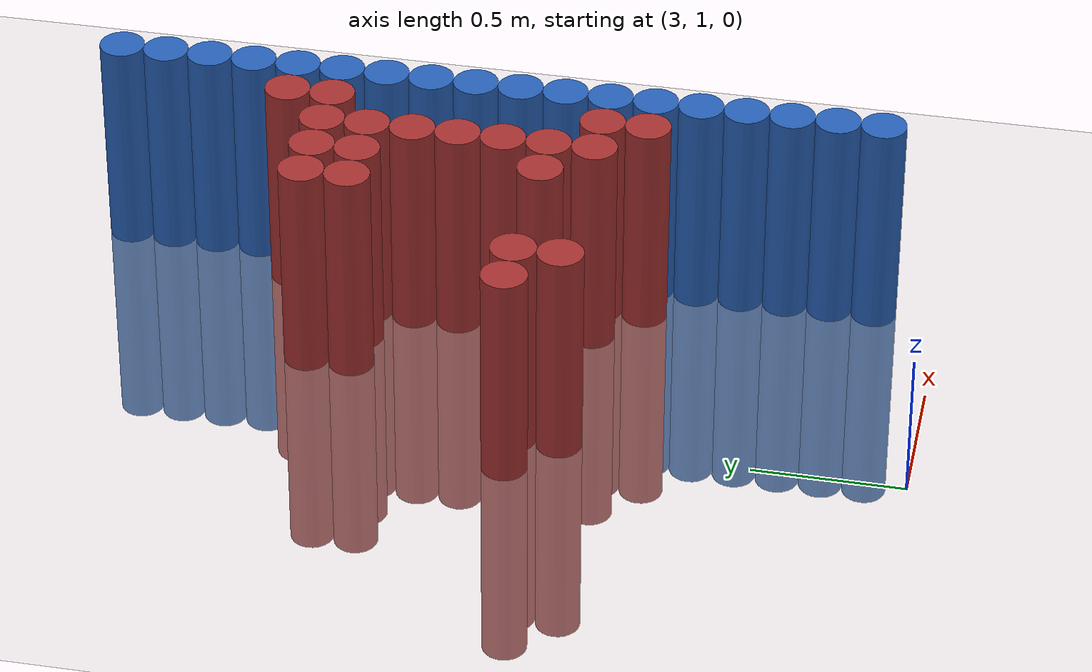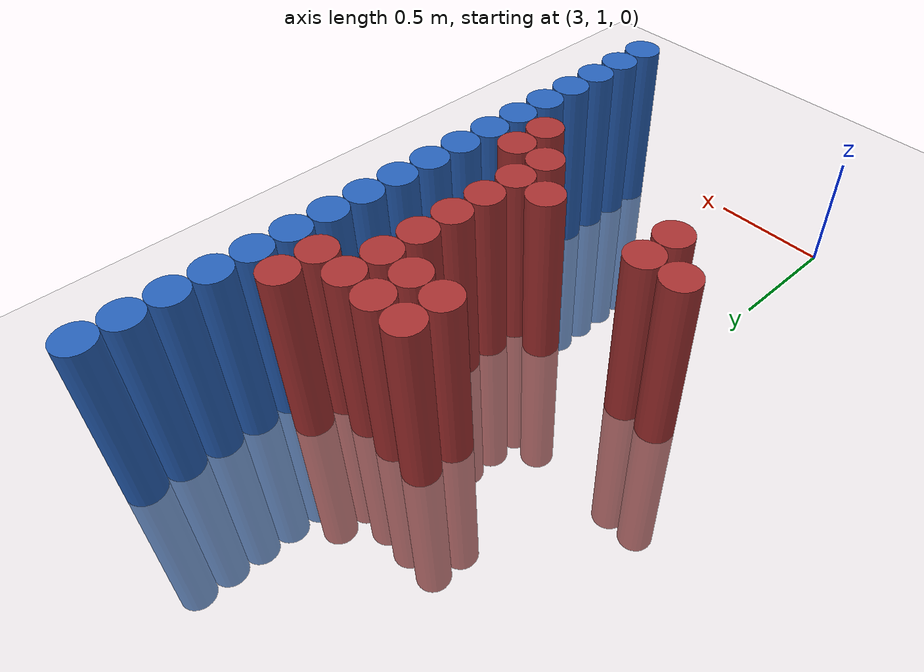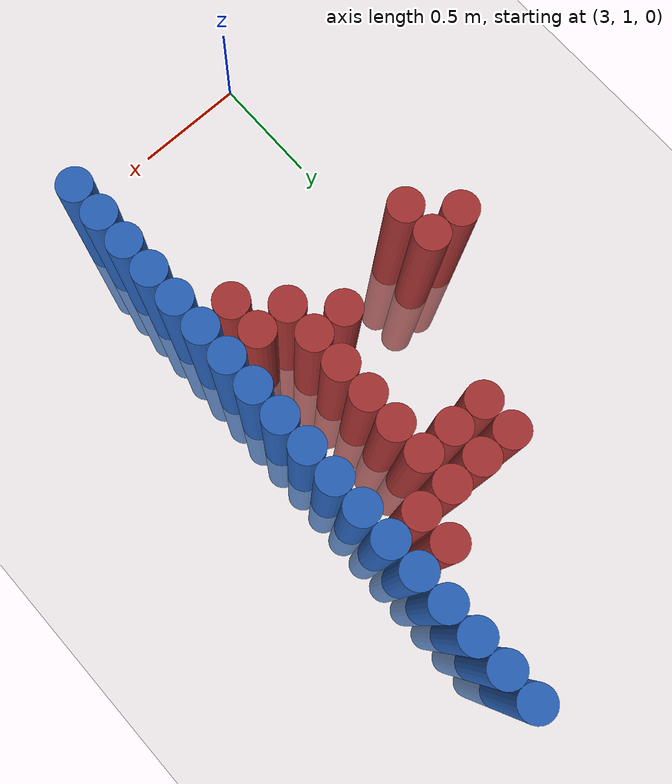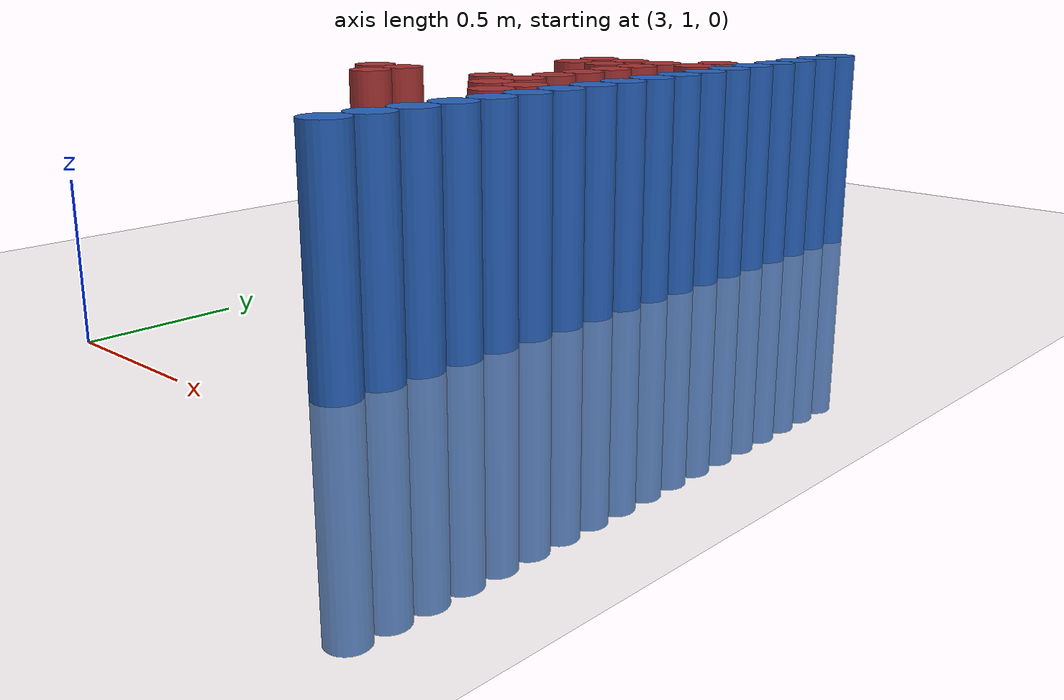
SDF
<sdf version="1.6">
 <world name="default">
  <model name="ground_plane">
   <static>1</static>
   <link name="link">
    <collision name="collision">
     <geometry><plane><normal>0 0 1</normal><size>100 100</size></plane></geometry>
     <surface><friction><ode><mu>100</mu><mu2>50</mu2></ode></friction></surface>
    </collision>
    <visual name="visual">
     <cast_shadows>0</cast_shadows>
     <geometry><plane><normal>0 0 1</normal><size>100 100</size></plane></geometry>
     <material>
      <script><uri>file://media/materials/scripts/gazebo.material</uri><name>Gazebo/Grey</name></script>
     </material>
    </visual>
   </link>
  </model>
  <model name="unit_cylinder_132">
   <static>1</static>
   <pose>3.925000 1.375000 0.000000 0.000000 0.000000 0.000000</pose>
   <link name="link">
    <inertial>
     <mass>1</mass>
     <inertia><ixx>0.145833</ixx><ixy>0</ixy><ixz>0</ixz><iyy>0.145833</iyy><iyz>0</iyz><izz>0.125</izz></inertia>
    </inertial>
    <collision name="collision">
     <geometry><cylinder><radius>0.075000</radius><length>1.5</length></cylinder></geometry>
    </collision>
    <visual name="visual">
     <geometry><cylinder><radius>0.075000</radius><length>1.5</length></cylinder></geometry>
     <material>
      <ambient>0.152000 0.379000 0.720000 1</ambient>
      <diffuse>0.152000 0.379000 0.720000 1</diffuse>
     </material>
     <material>
      <script><name>Gazebo/Grey</name><uri>file://media/materials/scripts/gazebo.material</uri></script>
     </material>
    </visual>
   </link>
  </model>
  <model name="unit_cylinder_134">
   <static>1</static>
   <pose>3.925000 1.525000 0.000000 0.000000 0.000000 0.000000</pose>
   <link name="link">
    <inertial>
     <mass>1</mass>
     <inertia><ixx>0.145833</ixx><ixy>0</ixy><ixz>0</ixz><iyy>0.145833</iyy><iyz>0</iyz><izz>0.125</izz></inertia>
    </inertial>
    <collision name="collision">
     <geometry><cylinder><radius>0.075000</radius><length>1.5</length></cylinder></geometry>
    </collision>
    <visual name="visual">
     <geometry><cylinder><radius>0.075000</radius><length>1.5</length></cylinder></geometry>
     <material>
      <ambient>0.152000 0.379000 0.720000 1</ambient>
      <diffuse>0.152000 0.379000 0.720000 1</diffuse>
     </material>
     <material>
      <script><name>Gazebo/Grey</name><uri>file://media/materials/scripts/gazebo.material</uri></script>
     </material>
    </visual>
   </link>
  </model>
  <model name="unit_cylinder_136">
   <static>1</static>
   <pose>3.925000 1.675000 0.000000 0.000000 0.000000 0.000000</pose>
   <link name="link">
    <inertial>
     <mass>1</mass>
     <inertia><ixx>0.145833</ixx><ixy>0</ixy><ixz>0</ixz><iyy>0.145833</iyy><iyz>0</iyz><izz>0.125</izz></inertia>
    </inertial>
    <collision name="collision">
     <geometry><cylinder><radius>0.075000</radius><length>1.5</length></cylinder></geometry>
    </collision>
    <visual name="visual">
     <geometry><cylinder><radius>0.075000</radius><length>1.5</length></cylinder></geometry>
     <material>
      <ambient>0.152000 0.379000 0.720000 1</ambient>
      <diffuse>0.152000 0.379000 0.720000 1</diffuse>
     </material>
     <material>
      <script><name>Gazebo/Grey</name><uri>file://media/materials/scripts/gazebo.material</uri></script>
     </material>
    </visual>
   </link>
  </model>
  <model name="unit_cylinder_138">
   <static>1</static>
   <pose>3.925000 1.825000 0.000000 0.000000 0.000000 0.000000</pose>
   <link name="link">
    <inertial>
     <mass>1</mass>
     <inertia><ixx>0.145833</ixx><ixy>0</ixy><ixz>0</ixz><iyy>0.145833</iyy><iyz>0</iyz><izz>0.125</izz></inertia>
    </inertial>
    <collision name="collision">
     <geometry><cylinder><radius>0.075000</radius><length>1.5</length></cylinder></geometry>
    </collision>
    <visual name="visual">
     <geometry><cylinder><radius>0.075000</radius><length>1.5</length></cylinder></geometry>
     <material>
      <ambient>0.152000 0.379000 0.720000 1</ambient>
      <diffuse>0.152000 0.379000 0.720000 1</diffuse>
     </material>
     <material>
      <script><name>Gazebo/Grey</name><uri>file://media/materials/scripts/gazebo.material</uri></script>
     </material>
    </visual>
   </link>
  </model>
  <model name="unit_cylinder_140">
   <static>1</static>
   <pose>3.925000 1.975000 0.000000 0.000000 0.000000 0.000000</pose>
   <link name="link">
    <inertial>
     <mass>1</mass>
     <inertia><ixx>0.145833</ixx><ixy>0</ixy><ixz>0</ixz><iyy>0.145833</iyy><iyz>0</iyz><izz>0.125</izz></inertia>
    </inertial>
    <collision name="collision">
     <geometry><cylinder><radius>0.075000</radius><length>1.5</length></cylinder></geometry>
    </collision>
    <visual name="visual">
     <geometry><cylinder><radius>0.075000</radius><length>1.5</length></cylinder></geometry>
     <material>
      <ambient>0.152000 0.379000 0.720000 1</ambient>
      <diffuse>0.152000 0.379000 0.720000 1</diffuse>
     </material>
     <material>
      <script><name>Gazebo/Grey</name><uri>file://media/materials/scripts/gazebo.material</uri></script>
     </material>
    </visual>
   </link>
  </model>
  <model name="unit_cylinder_142">
   <static>1</static>
   <pose>3.925000 2.125000 0.000000 0.000000 0.000000 0.000000</pose>
   <link name="link">
    <inertial>
     <mass>1</mass>
     <inertia><ixx>0.145833</ixx><ixy>0</ixy><ixz>0</ixz><iyy>0.145833</iyy><iyz>0</iyz><izz>0.125</izz></inertia>
    </inertial>
    <collision name="collision">
     <geometry><cylinder><radius>0.075000</radius><length>1.5</length></cylinder></geometry>
    </collision>
    <visual name="visual">
     <geometry><cylinder><radius>0.075000</radius><length>1.5</length></cylinder></geometry>
     <material>
      <ambient>0.152000 0.379000 0.720000 1</ambient>
      <diffuse>0.152000 0.379000 0.720000 1</diffuse>
     </material>
     <material>
      <script><name>Gazebo/Grey</name><uri>file://media/materials/scripts/gazebo.material</uri></script>
     </material>
    </visual>
   </link>
  </model>
  <model name="unit_cylinder_144">
   <static>1</static>
   <pose>3.925000 2.275000 0.000000 0.000000 0.000000 0.000000</pose>
   <link name="link">
    <inertial>
     <mass>1</mass>
     <inertia><ixx>0.145833</ixx><ixy>0</ixy><ixz>0</ixz><iyy>0.145833</iyy><iyz>0</iyz><izz>0.125</izz></inertia>
    </inertial>
    <collision name="collision">
     <geometry><cylinder><radius>0.075000</radius><length>1.5</length></cylinder></geometry>
    </collision>
    <visual name="visual">
     <geometry><cylinder><radius>0.075000</radius><length>1.5</length></cylinder></geometry>
     <material>
      <ambient>0.152000 0.379000 0.720000 1</ambient>
      <diffuse>0.152000 0.379000 0.720000 1</diffuse>
     </material>
     <material>
      <script><name>Gazebo/Grey</name><uri>file://media/materials/scripts/gazebo.material</uri></script>
     </material>
    </visual>
   </link>
  </model>
  <model name="unit_cylinder_146">
   <static>1</static>
   <pose>3.925000 2.425000 0.000000 0.000000 0.000000 0.000000</pose>
   <link name="link">
    <inertial>
     <mass>1</mass>
     <inertia><ixx>0.145833</ixx><ixy>0</ixy><ixz>0</ixz><iyy>0.145833</iyy><iyz>0</iyz><izz>0.125</izz></inertia>
    </inertial>
    <collision name="collision">
     <geometry><cylinder><radius>0.075000</radius><length>1.5</length></cylinder></geometry>
    </collision>
    <visual name="visual">
     <geometry><cylinder><radius>0.075000</radius><length>1.5</length></cylinder></geometry>
     <material>
      <ambient>0.152000 0.379000 0.720000 1</ambient>
      <diffuse>0.152000 0.379000 0.720000 1</diffuse>
     </material>
     <material>
      <script><name>Gazebo/Grey</name><uri>file://media/materials/scripts/gazebo.material</uri></script>
     </material>
    </visual>
   </link>
  </model>
  <model name="unit_cylinder_148">
   <static>1</static>
   <pose>3.925000 2.575000 0.000000 0.000000 0.000000 0.000000</pose>
   <link name="link">
    <inertial>
     <mass>1</mass>
     <inertia><ixx>0.145833</ixx><ixy>0</ixy><ixz>0</ixz><iyy>0.145833</iyy><iyz>0</iyz><izz>0.125</izz></inertia>
    </inertial>
    <collision name="collision">
     <geometry><cylinder><radius>0.075000</radius><length>1.5</length></cylinder></geometry>
    </collision>
    <visual name="visual">
     <geometry><cylinder><radius>0.075000</radius><length>1.5</length></cylinder></geometry>
     <material>
      <ambient>0.152000 0.379000 0.720000 1</ambient>
      <diffuse>0.152000 0.379000 0.720000 1</diffuse>
     </material>
     <material>
      <script><name>Gazebo/Grey</name><uri>file://media/materials/scripts/gazebo.material</uri></script>
     </material>
    </visual>
   </link>
  </model>
  <model name="unit_cylinder_150">
   <static>1</static>
   <pose>3.925000 2.725000 0.000000 0.000000 0.000000 0.000000</pose>
   <link name="link">
    <inertial>
     <mass>1</mass>
     <inertia><ixx>0.145833</ixx><ixy>0</ixy><ixz>0</ixz><iyy>0.145833</iyy><iyz>0</iyz><izz>0.125</izz></inertia>
    </inertial>
    <collision name="collision">
     <geometry><cylinder><radius>0.075000</radius><length>1.5</length></cylinder></geometry>
    </collision>
    <visual name="visual">
     <geometry><cylinder><radius>0.075000</radius><length>1.5</length></cylinder></geometry>
     <material>
      <ambient>0.152000 0.379000 0.720000 1</ambient>
      <diffuse>0.152000 0.379000 0.720000 1</diffuse>
     </material>
     <material>
      <script><name>Gazebo/Grey</name><uri>file://media/materials/scripts/gazebo.material</uri></script>
     </material>
    </visual>
   </link>
  </model>
  <model name="unit_cylinder_152">
   <static>1</static>
   <pose>3.925000 2.875000 0.000000 0.000000 0.000000 0.000000</pose>
   <link name="link">
    <inertial>
     <mass>1</mass>
     <inertia><ixx>0.145833</ixx><ixy>0</ixy><ixz>0</ixz><iyy>0.145833</iyy><iyz>0</iyz><izz>0.125</izz></inertia>
    </inertial>
    <collision name="collision">
     <geometry><cylinder><radius>0.075000</radius><length>1.5</length></cylinder></geometry>
    </collision>
    <visual name="visual">
     <geometry><cylinder><radius>0.075000</radius><length>1.5</length></cylinder></geometry>
     <material>
      <ambient>0.152000 0.379000 0.720000 1</ambient>
      <diffuse>0.152000 0.379000 0.720000 1</diffuse>
     </material>
     <material>
      <script><name>Gazebo/Grey</name><uri>file://media/materials/scripts/gazebo.material</uri></script>
     </material>
    </visual>
   </link>
  </model>
  <model name="unit_cylinder_154">
   <static>1</static>
   <pose>3.925000 3.025000 0.000000 0.000000 0.000000 0.000000</pose>
   <link name="link">
    <inertial>
     <mass>1</mass>
     <inertia><ixx>0.145833</ixx><ixy>0</ixy><ixz>0</ixz><iyy>0.145833</iyy><iyz>0</iyz><izz>0.125</izz></inertia>
    </inertial>
    <collision name="collision">
     <geometry><cylinder><radius>0.075000</radius><length>1.5</length></cylinder></geometry>
    </collision>
    <visual name="visual">
     <geometry><cylinder><radius>0.075000</radius><length>1.5</length></cylinder></geometry>
     <material>
      <ambient>0.152000 0.379000 0.720000 1</ambient>
      <diffuse>0.152000 0.379000 0.720000 1</diffuse>
     </material>
     <material>
      <script><name>Gazebo/Grey</name><uri>file://media/materials/scripts/gazebo.material</uri></script>
     </material>
    </visual>
   </link>
  </model>
  <model name="unit_cylinder_156">
   <static>1</static>
   <pose>3.925000 3.175000 0.000000 0.000000 0.000000 0.000000</pose>
   <link name="link">
    <inertial>
     <mass>1</mass>
     <inertia><ixx>0.145833</ixx><ixy>0</ixy><ixz>0</ixz><iyy>0.145833</iyy><iyz>0</iyz><izz>0.125</izz></inertia>
    </inertial>
    <collision name="collision">
     <geometry><cylinder><radius>0.075000</radius><length>1.5</length></cylinder></geometry>
    </collision>
    <visual name="visual">
     <geometry><cylinder><radius>0.075000</radius><length>1.5</length></cylinder></geometry>
     <material>
      <ambient>0.152000 0.379000 0.720000 1</ambient>
      <diffuse>0.152000 0.379000 0.720000 1</diffuse>
     </material>
     <material>
      <script><name>Gazebo/Grey</name><uri>file://media/materials/scripts/gazebo.material</uri></script>
     </material>
    </visual>
   </link>
  </model>
  <model name="unit_cylinder_158">
   <static>1</static>
   <pose>3.925000 3.325000 0.000000 0.000000 0.000000 0.000000</pose>
   <link name="link">
    <inertial>
     <mass>1</mass>
     <inertia><ixx>0.145833</ixx><ixy>0</ixy><ixz>0</ixz><iyy>0.145833</iyy><iyz>0</iyz><izz>0.125</izz></inertia>
    </inertial>
    <collision name="collision">
     <geometry><cylinder><radius>0.075000</radius><length>1.5</length></cylinder></geometry>
    </collision>
    <visual name="visual">
     <geometry><cylinder><radius>0.075000</radius><length>1.5</length></cylinder></geometry>
     <material>
      <ambient>0.152000 0.379000 0.720000 1</ambient>
      <diffuse>0.152000 0.379000 0.720000 1</diffuse>
     </material>
     <material>
      <script><name>Gazebo/Grey</name><uri>file://media/materials/scripts/gazebo.material</uri></script>
     </material>
    </visual>
   </link>
  </model>
  <model name="unit_cylinder_160">
   <static>1</static>
   <pose>3.925000 3.475000 0.000000 0.000000 0.000000 0.000000</pose>
   <link name="link">
    <inertial>
     <mass>1</mass>
     <inertia><ixx>0.145833</ixx><ixy>0</ixy><ixz>0</ixz><iyy>0.145833</iyy><iyz>0</iyz><izz>0.125</izz></inertia>
    </inertial>
    <collision name="collision">
     <geometry><cylinder><radius>0.075000</radius><length>1.5</length></cylinder></geometry>
    </collision>
    <visual name="visual">
     <geometry><cylinder><radius>0.075000</radius><length>1.5</length></cylinder></geometry>
     <material>
      <ambient>0.152000 0.379000 0.720000 1</ambient>
      <diffuse>0.152000 0.379000 0.720000 1</diffuse>
     </material>
     <material>
      <script><name>Gazebo/Grey</name><uri>file://media/materials/scripts/gazebo.material</uri></script>
     </material>
    </visual>
   </link>
  </model>
  <model name="unit_cylinder_162">
   <static>1</static>
   <pose>3.925000 3.625000 0.000000 0.000000 0.000000 0.000000</pose>
   <link name="link">
    <inertial>
     <mass>1</mass>
     <inertia><ixx>0.145833</ixx><ixy>0</ixy><ixz>0</ixz><iyy>0.145833</iyy><iyz>0</iyz><izz>0.125</izz></inertia>
    </inertial>
    <collision name="collision">
     <geometry><cylinder><radius>0.075000</radius><length>1.5</length></cylinder></geometry>
    </collision>
    <visual name="visual">
     <geometry><cylinder><radius>0.075000</radius><length>1.5</length></cylinder></geometry>
     <material>
      <ambient>0.152000 0.379000 0.720000 1</ambient>
      <diffuse>0.152000 0.379000 0.720000 1</diffuse>
     </material>
     <material>
      <script><name>Gazebo/Grey</name><uri>file://media/materials/scripts/gazebo.material</uri></script>
     </material>
    </visual>
   </link>
  </model>
  <model name="unit_cylinder_164">
   <static>1</static>
   <pose>3.925000 3.775000 0.000000 0.000000 0.000000 0.000000</pose>
   <link name="link">
    <inertial>
     <mass>1</mass>
     <inertia><ixx>0.145833</ixx><ixy>0</ixy><ixz>0</ixz><iyy>0.145833</iyy><iyz>0</iyz><izz>0.125</izz></inertia>
    </inertial>
    <collision name="collision">
     <geometry><cylinder><radius>0.075000</radius><length>1.5</length></cylinder></geometry>
    </collision>
    <visual name="visual">
     <geometry><cylinder><radius>0.075000</radius><length>1.5</length></cylinder></geometry>
     <material>
      <ambient>0.152000 0.379000 0.720000 1</ambient>
      <diffuse>0.152000 0.379000 0.720000 1</diffuse>
     </material>
     <material>
      <script><name>Gazebo/Grey</name><uri>file://media/materials/scripts/gazebo.material</uri></script>
     </material>
    </visual>
   </link>
  </model>
  <model name="unit_cylinder_433">
   <static>1</static>
   <pose>2.875000 2.275000 0.000000 0.000000 0.000000 0.000000</pose>
   <link name="link">
    <inertial>
     <mass>1</mass>
     <inertia><ixx>0.145833</ixx><ixy>0</ixy><ixz>0</ixz><iyy>0.145833</iyy><iyz>0</iyz><izz>0.125</izz></inertia>
    </inertial>
    <collision name="collision">
     <geometry><cylinder><radius>0.075000</radius><length>1.5</length></cylinder></geometry>
    </collision>
    <visual name="visual">
     <geometry><cylinder><radius>0.075000</radius><length>1.5</length></cylinder></geometry>
     <material>
      <ambient>0.648000 0.192000 0.192000 1</ambient>
      <diffuse>0.648000 0.192000 0.192000 1</diffuse>
     </material>
     <material>
      <script><name>Gazebo/Grey</name><uri>file://media/materials/scripts/gazebo.material</uri></script>
     </material>
    </visual>
   </link>
  </model>
  <model name="unit_cylinder_435">
   <static>1</static>
   <pose>3.025000 2.125000 0.000000 0.000000 0.000000 0.000000</pose>
   <link name="link">
    <inertial>
     <mass>1</mass>
     <inertia><ixx>0.145833</ixx><ixy>0</ixy><ixz>0</ixz><iyy>0.145833</iyy><iyz>0</iyz><izz>0.125</izz></inertia>
    </inertial>
    <collision name="collision">
     <geometry><cylinder><radius>0.075000</radius><length>1.5</length></cylinder></geometry>
    </collision>
    <visual name="visual">
     <geometry><cylinder><radius>0.075000</radius><length>1.5</length></cylinder></geometry>
     <material>
      <ambient>0.648000 0.192000 0.192000 1</ambient>
      <diffuse>0.648000 0.192000 0.192000 1</diffuse>
     </material>
     <material>
      <script><name>Gazebo/Grey</name><uri>file://media/materials/scripts/gazebo.material</uri></script>
     </material>
    </visual>
   </link>
  </model>
  <model name="unit_cylinder_436">
   <static>1</static>
   <pose>3.025000 2.275000 0.000000 0.000000 0.000000 0.000000</pose>
   <link name="link">
    <inertial>
     <mass>1</mass>
     <inertia><ixx>0.145833</ixx><ixy>0</ixy><ixz>0</ixz><iyy>0.145833</iyy><iyz>0</iyz><izz>0.125</izz></inertia>
    </inertial>
    <collision name="collision">
     <geometry><cylinder><radius>0.075000</radius><length>1.5</length></cylinder></geometry>
    </collision>
    <visual name="visual">
     <geometry><cylinder><radius>0.075000</radius><length>1.5</length></cylinder></geometry>
     <material>
      <ambient>0.648000 0.192000 0.192000 1</ambient>
      <diffuse>0.648000 0.192000 0.192000 1</diffuse>
     </material>
     <material>
      <script><name>Gazebo/Grey</name><uri>file://media/materials/scripts/gazebo.material</uri></script>
     </material>
    </visual>
   </link>
  </model>
  <model name="unit_cylinder_441">
   <static>1</static>
   <pose>3.325000 2.875000 0.000000 0.000000 0.000000 0.000000</pose>
   <link name="link">
    <inertial>
     <mass>1</mass>
     <inertia><ixx>0.145833</ixx><ixy>0</ixy><ixz>0</ixz><iyy>0.145833</iyy><iyz>0</iyz><izz>0.125</izz></inertia>
    </inertial>
    <collision name="collision">
     <geometry><cylinder><radius>0.075000</radius><length>1.5</length></cylinder></geometry>
    </collision>
    <visual name="visual">
     <geometry><cylinder><radius>0.075000</radius><length>1.5</length></cylinder></geometry>
     <material>
      <ambient>0.648000 0.192000 0.192000 1</ambient>
      <diffuse>0.648000 0.192000 0.192000 1</diffuse>
     </material>
     <material>
      <script><name>Gazebo/Grey</name><uri>file://media/materials/scripts/gazebo.material</uri></script>
     </material>
    </visual>
   </link>
  </model>
  <model name="unit_cylinder_442">
   <static>1</static>
   <pose>3.325000 3.025000 0.000000 0.000000 0.000000 0.000000</pose>
   <link name="link">
    <inertial>
     <mass>1</mass>
     <inertia><ixx>0.145833</ixx><ixy>0</ixy><ixz>0</ixz><iyy>0.145833</iyy><iyz>0</iyz><izz>0.125</izz></inertia>
    </inertial>
    <collision name="collision">
     <geometry><cylinder><radius>0.075000</radius><length>1.5</length></cylinder></geometry>
    </collision>
    <visual name="visual">
     <geometry><cylinder><radius>0.075000</radius><length>1.5</length></cylinder></geometry>
     <material>
      <ambient>0.648000 0.192000 0.192000 1</ambient>
      <diffuse>0.648000 0.192000 0.192000 1</diffuse>
     </material>
     <material>
      <script><name>Gazebo/Grey</name><uri>file://media/materials/scripts/gazebo.material</uri></script>
     </material>
    </visual>
   </link>
  </model>
  <model name="unit_cylinder_447">
   <static>1</static>
   <pose>3.475000 2.275000 0.000000 0.000000 0.000000 0.000000</pose>
   <link name="link">
    <inertial>
     <mass>1</mass>
     <inertia><ixx>0.145833</ixx><ixy>0</ixy><ixz>0</ixz><iyy>0.145833</iyy><iyz>0</iyz><izz>0.125</izz></inertia>
    </inertial>
    <collision name="collision">
     <geometry><cylinder><radius>0.075000</radius><length>1.5</length></cylinder></geometry>
    </collision>
    <visual name="visual">
     <geometry><cylinder><radius>0.075000</radius><length>1.5</length></cylinder></geometry>
     <material>
      <ambient>0.648000 0.192000 0.192000 1</ambient>
      <diffuse>0.648000 0.192000 0.192000 1</diffuse>
     </material>
     <material>
      <script><name>Gazebo/Grey</name><uri>file://media/materials/scripts/gazebo.material</uri></script>
     </material>
    </visual>
   </link>
  </model>
  <model name="unit_cylinder_448">
   <static>1</static>
   <pose>3.475000 2.875000 0.000000 0.000000 0.000000 0.000000</pose>
   <link name="link">
    <inertial>
     <mass>1</mass>
     <inertia><ixx>0.145833</ixx><ixy>0</ixy><ixz>0</ixz><iyy>0.145833</iyy><iyz>0</iyz><izz>0.125</izz></inertia>
    </inertial>
    <collision name="collision">
     <geometry><cylinder><radius>0.075000</radius><length>1.5</length></cylinder></geometry>
    </collision>
    <visual name="visual">
     <geometry><cylinder><radius>0.075000</radius><length>1.5</length></cylinder></geometry>
     <material>
      <ambient>0.648000 0.192000 0.192000 1</ambient>
      <diffuse>0.648000 0.192000 0.192000 1</diffuse>
     </material>
     <material>
      <script><name>Gazebo/Grey</name><uri>file://media/materials/scripts/gazebo.material</uri></script>
     </material>
    </visual>
   </link>
  </model>
  <model name="unit_cylinder_449">
   <static>1</static>
   <pose>3.475000 3.025000 0.000000 0.000000 0.000000 0.000000</pose>
   <link name="link">
    <inertial>
     <mass>1</mass>
     <inertia><ixx>0.145833</ixx><ixy>0</ixy><ixz>0</ixz><iyy>0.145833</iyy><iyz>0</iyz><izz>0.125</izz></inertia>
    </inertial>
    <collision name="collision">
     <geometry><cylinder><radius>0.075000</radius><length>1.5</length></cylinder></geometry>
    </collision>
    <visual name="visual">
     <geometry><cylinder><radius>0.075000</radius><length>1.5</length></cylinder></geometry>
     <material>
      <ambient>0.648000 0.192000 0.192000 1</ambient>
      <diffuse>0.648000 0.192000 0.192000 1</diffuse>
     </material>
     <material>
      <script><name>Gazebo/Grey</name><uri>file://media/materials/scripts/gazebo.material</uri></script>
     </material>
    </visual>
   </link>
  </model>
  <model name="unit_cylinder_457">
   <static>1</static>
   <pose>3.625000 2.125000 0.000000 0.000000 0.000000 0.000000</pose>
   <link name="link">
    <inertial>
     <mass>1</mass>
     <inertia><ixx>0.145833</ixx><ixy>0</ixy><ixz>0</ixz><iyy>0.145833</iyy><iyz>0</iyz><izz>0.125</izz></inertia>
    </inertial>
    <collision name="collision">
     <geometry><cylinder><radius>0.075000</radius><length>1.5</length></cylinder></geometry>
    </collision>
    <visual name="visual">
     <geometry><cylinder><radius>0.075000</radius><length>1.5</length></cylinder></geometry>
     <material>
      <ambient>0.648000 0.192000 0.192000 1</ambient>
      <diffuse>0.648000 0.192000 0.192000 1</diffuse>
     </material>
     <material>
      <script><name>Gazebo/Grey</name><uri>file://media/materials/scripts/gazebo.material</uri></script>
     </material>
    </visual>
   </link>
  </model>
  <model name="unit_cylinder_458">
   <static>1</static>
   <pose>3.625000 2.275000 0.000000 0.000000 0.000000 0.000000</pose>
   <link name="link">
    <inertial>
     <mass>1</mass>
     <inertia><ixx>0.145833</ixx><ixy>0</ixy><ixz>0</ixz><iyy>0.145833</iyy><iyz>0</iyz><izz>0.125</izz></inertia>
    </inertial>
    <collision name="collision">
     <geometry><cylinder><radius>0.075000</radius><length>1.5</length></cylinder></geometry>
    </collision>
    <visual name="visual">
     <geometry><cylinder><radius>0.075000</radius><length>1.5</length></cylinder></geometry>
     <material>
      <ambient>0.648000 0.192000 0.192000 1</ambient>
      <diffuse>0.648000 0.192000 0.192000 1</diffuse>
     </material>
     <material>
      <script><name>Gazebo/Grey</name><uri>file://media/materials/scripts/gazebo.material</uri></script>
     </material>
    </visual>
   </link>
  </model>
  <model name="unit_cylinder_459">
   <static>1</static>
   <pose>3.625000 2.425000 0.000000 0.000000 0.000000 0.000000</pose>
   <link name="link">
    <inertial>
     <mass>1</mass>
     <inertia><ixx>0.145833</ixx><ixy>0</ixy><ixz>0</ixz><iyy>0.145833</iyy><iyz>0</iyz><izz>0.125</izz></inertia>
    </inertial>
    <collision name="collision">
     <geometry><cylinder><radius>0.075000</radius><length>1.5</length></cylinder></geometry>
    </collision>
    <visual name="visual">
     <geometry><cylinder><radius>0.075000</radius><length>1.5</length></cylinder></geometry>
     <material>
      <ambient>0.648000 0.192000 0.192000 1</ambient>
      <diffuse>0.648000 0.192000 0.192000 1</diffuse>
     </material>
     <material>
      <script><name>Gazebo/Grey</name><uri>file://media/materials/scripts/gazebo.material</uri></script>
     </material>
    </visual>
   </link>
  </model>
  <model name="unit_cylinder_460">
   <static>1</static>
   <pose>3.625000 2.575000 0.000000 0.000000 0.000000 0.000000</pose>
   <link name="link">
    <inertial>
     <mass>1</mass>
     <inertia><ixx>0.145833</ixx><ixy>0</ixy><ixz>0</ixz><iyy>0.145833</iyy><iyz>0</iyz><izz>0.125</izz></inertia>
    </inertial>
    <collision name="collision">
     <geometry><cylinder><radius>0.075000</radius><length>1.5</length></cylinder></geometry>
    </collision>
    <visual name="visual">
     <geometry><cylinder><radius>0.075000</radius><length>1.5</length></cylinder></geometry>
     <material>
      <ambient>0.648000 0.192000 0.192000 1</ambient>
      <diffuse>0.648000 0.192000 0.192000 1</diffuse>
     </material>
     <material>
      <script><name>Gazebo/Grey</name><uri>file://media/materials/scripts/gazebo.material</uri></script>
     </material>
    </visual>
   </link>
  </model>
  <model name="unit_cylinder_461">
   <static>1</static>
   <pose>3.625000 2.725000 0.000000 0.000000 0.000000 0.000000</pose>
   <link name="link">
    <inertial>
     <mass>1</mass>
     <inertia><ixx>0.145833</ixx><ixy>0</ixy><ixz>0</ixz><iyy>0.145833</iyy><iyz>0</iyz><izz>0.125</izz></inertia>
    </inertial>
    <collision name="collision">
     <geometry><cylinder><radius>0.075000</radius><length>1.5</length></cylinder></geometry>
    </collision>
    <visual name="visual">
     <geometry><cylinder><radius>0.075000</radius><length>1.5</length></cylinder></geometry>
     <material>
      <ambient>0.648000 0.192000 0.192000 1</ambient>
      <diffuse>0.648000 0.192000 0.192000 1</diffuse>
     </material>
     <material>
      <script><name>Gazebo/Grey</name><uri>file://media/materials/scripts/gazebo.material</uri></script>
     </material>
    </visual>
   </link>
  </model>
  <model name="unit_cylinder_462">
   <static>1</static>
   <pose>3.625000 2.875000 0.000000 0.000000 0.000000 0.000000</pose>
   <link name="link">
    <inertial>
     <mass>1</mass>
     <inertia><ixx>0.145833</ixx><ixy>0</ixy><ixz>0</ixz><iyy>0.145833</iyy><iyz>0</iyz><izz>0.125</izz></inertia>
    </inertial>
    <collision name="collision">
     <geometry><cylinder><radius>0.075000</radius><length>1.5</length></cylinder></geometry>
    </collision>
    <visual name="visual">
     <geometry><cylinder><radius>0.075000</radius><length>1.5</length></cylinder></geometry>
     <material>
      <ambient>0.648000 0.192000 0.192000 1</ambient>
      <diffuse>0.648000 0.192000 0.192000 1</diffuse>
     </material>
     <material>
      <script><name>Gazebo/Grey</name><uri>file://media/materials/scripts/gazebo.material</uri></script>
     </material>
    </visual>
   </link>
  </model>
  <model name="unit_cylinder_463">
   <static>1</static>
   <pose>3.625000 3.025000 0.000000 0.000000 0.000000 0.000000</pose>
   <link name="link">
    <inertial>
     <mass>1</mass>
     <inertia><ixx>0.145833</ixx><ixy>0</ixy><ixz>0</ixz><iyy>0.145833</iyy><iyz>0</iyz><izz>0.125</izz></inertia>
    </inertial>
    <collision name="collision">
     <geometry><cylinder><radius>0.075000</radius><length>1.5</length></cylinder></geometry>
    </collision>
    <visual name="visual">
     <geometry><cylinder><radius>0.075000</radius><length>1.5</length></cylinder></geometry>
     <material>
      <ambient>0.648000 0.192000 0.192000 1</ambient>
      <diffuse>0.648000 0.192000 0.192000 1</diffuse>
     </material>
     <material>
      <script><name>Gazebo/Grey</name><uri>file://media/materials/scripts/gazebo.material</uri></script>
     </material>
    </visual>
   </link>
  </model>
  <model name="unit_cylinder_482">
   <static>1</static>
   <pose>3.775000 1.975000 0.000000 0.000000 0.000000 0.000000</pose>
   <link name="link">
    <inertial>
     <mass>1</mass>
     <inertia><ixx>0.145833</ixx><ixy>0</ixy><ixz>0</ixz><iyy>0.145833</iyy><iyz>0</iyz><izz>0.125</izz></inertia>
    </inertial>
    <collision name="collision">
     <geometry><cylinder><radius>0.075000</radius><length>1.5</length></cylinder></geometry>
    </collision>
    <visual name="visual">
     <geometry><cylinder><radius>0.075000</radius><length>1.5</length></cylinder></geometry>
     <material>
      <ambient>0.648000 0.192000 0.192000 1</ambient>
      <diffuse>0.648000 0.192000 0.192000 1</diffuse>
     </material>
     <material>
      <script><name>Gazebo/Grey</name><uri>file://media/materials/scripts/gazebo.material</uri></script>
     </material>
    </visual>
   </link>
  </model>
  <model name="unit_cylinder_483">
   <static>1</static>
   <pose>3.775000 2.125000 0.000000 0.000000 0.000000 0.000000</pose>
   <link name="link">
    <inertial>
     <mass>1</mass>
     <inertia><ixx>0.145833</ixx><ixy>0</ixy><ixz>0</ixz><iyy>0.145833</iyy><iyz>0</iyz><izz>0.125</izz></inertia>
    </inertial>
    <collision name="collision">
     <geometry><cylinder><radius>0.075000</radius><length>1.5</length></cylinder></geometry>
    </collision>
    <visual name="visual">
     <geometry><cylinder><radius>0.075000</radius><length>1.5</length></cylinder></geometry>
     <material>
      <ambient>0.648000 0.192000 0.192000 1</ambient>
      <diffuse>0.648000 0.192000 0.192000 1</diffuse>
     </material>
     <material>
      <script><name>Gazebo/Grey</name><uri>file://media/materials/scripts/gazebo.material</uri></script>
     </material>
    </visual>
   </link>
  </model>
  <model name="unit_cylinder_484">
   <static>1</static>
   <pose>3.775000 3.025000 0.000000 0.000000 0.000000 0.000000</pose>
   <link name="link">
    <inertial>
     <mass>1</mass>
     <inertia><ixx>0.145833</ixx><ixy>0</ixy><ixz>0</ixz><iyy>0.145833</iyy><iyz>0</iyz><izz>0.125</izz></inertia>
    </inertial>
    <collision name="collision">
     <geometry><cylinder><radius>0.075000</radius><length>1.5</length></cylinder></geometry>
    </collision>
    <visual name="visual">
     <geometry><cylinder><radius>0.075000</radius><length>1.5</length></cylinder></geometry>
     <material>
      <ambient>0.648000 0.192000 0.192000 1</ambient>
      <diffuse>0.648000 0.192000 0.192000 1</diffuse>
     </material>
     <material>
      <script><name>Gazebo/Grey</name><uri>file://media/materials/scripts/gazebo.material</uri></script>
     </material>
    </visual>
   </link>
  </model>
  <model name="unit_cylinder_485">
   <static>1</static>
   <pose>3.775000 3.175000 0.000000 0.000000 0.000000 0.000000</pose>
   <link name="link">
    <inertial>
     <mass>1</mass>
     <inertia><ixx>0.145833</ixx><ixy>0</ixy><ixz>0</ixz><iyy>0.145833</iyy><iyz>0</iyz><izz>0.125</izz></inertia>
    </inertial>
    <collision name="collision">
     <geometry><cylinder><radius>0.075000</radius><length>1.5</length></cylinder></geometry>
    </collision>
    <visual name="visual">
     <geometry><cylinder><radius>0.075000</radius><length>1.5</length></cylinder></geometry>
     <material>
      <ambient>0.648000 0.192000 0.192000 1</ambient>
      <diffuse>0.648000 0.192000 0.192000 1</diffuse>
     </material>
     <material>
      <script><name>Gazebo/Grey</name><uri>file://media/materials/scripts/gazebo.material</uri></script>
     </material>
    </visual>
   </link>
  </model>
  <model name="unit_cylinder_511">
   <static>1</static>
   <pose>3.925000 1.225000 0.000000 0.000000 0.000000 0.000000</pose>
   <link name="link">
    <inertial>
     <mass>1</mass>
     <inertia><ixx>0.145833</ixx><ixy>0</ixy><ixz>0</ixz><iyy>0.145833</iyy><iyz>0</iyz><izz>0.125</izz></inertia>
    </inertial>
    <collision name="collision">
     <geometry><cylinder><radius>0.075000</radius><length>1.5</length></cylinder></geometry>
    </collision>
    <visual name="visual">
     <geometry><cylinder><radius>0.075000</radius><length>1.5</length></cylinder></geometry>
     <material>
      <ambient>0.152000 0.379000 0.720000 1</ambient>
      <diffuse>0.152000 0.379000 0.720000 1</diffuse>
     </material>
     <material>
      <script><name>Gazebo/Grey</name><uri>file://media/materials/scripts/gazebo.material</uri></script>
     </material>
    </visual>
   </link>
  </model>
  <model name="unit_cylinder_512">
   <static>1</static>
   <pose>3.925000 1.375000 0.000000 0.000000 0.000000 0.000000</pose>
   <link name="link">
    <inertial>
     <mass>1</mass>
     <inertia><ixx>0.145833</ixx><ixy>0</ixy><ixz>0</ixz><iyy>0.145833</iyy><iyz>0</iyz><izz>0.125</izz></inertia>
    </inertial>
    <collision name="collision">
     <geometry><cylinder><radius>0.075000</radius><length>1.5</length></cylinder></geometry>
    </collision>
    <visual name="visual">
     <geometry><cylinder><radius>0.075000</radius><length>1.5</length></cylinder></geometry>
     <material>
      <ambient>0.152000 0.379000 0.720000 1</ambient>
      <diffuse>0.152000 0.379000 0.720000 1</diffuse>
     </material>
     <material>
      <script><name>Gazebo/Grey</name><uri>file://media/materials/scripts/gazebo.material</uri></script>
     </material>
    </visual>
   </link>
  </model>
  <model name="unit_cylinder_513">
   <static>1</static>
   <pose>3.925000 1.525000 0.000000 0.000000 0.000000 0.000000</pose>
   <link name="link">
    <inertial>
     <mass>1</mass>
     <inertia><ixx>0.145833</ixx><ixy>0</ixy><ixz>0</ixz><iyy>0.145833</iyy><iyz>0</iyz><izz>0.125</izz></inertia>
    </inertial>
    <collision name="collision">
     <geometry><cylinder><radius>0.075000</radius><length>1.5</length></cylinder></geometry>
    </collision>
    <visual name="visual">
     <geometry><cylinder><radius>0.075000</radius><length>1.5</length></cylinder></geometry>
     <material>
      <ambient>0.152000 0.379000 0.720000 1</ambient>
      <diffuse>0.152000 0.379000 0.720000 1</diffuse>
     </material>
     <material>
      <script><name>Gazebo/Grey</name><uri>file://media/materials/scripts/gazebo.material</uri></script>
     </material>
    </visual>
   </link>
  </model>
  <model name="unit_cylinder_514">
   <static>1</static>
   <pose>3.925000 1.675000 0.000000 0.000000 0.000000 0.000000</pose>
   <link name="link">
    <inertial>
     <mass>1</mass>
     <inertia><ixx>0.145833</ixx><ixy>0</ixy><ixz>0</ixz><iyy>0.145833</iyy><iyz>0</iyz><izz>0.125</izz></inertia>
    </inertial>
    <collision name="collision">
     <geometry><cylinder><radius>0.075000</radius><length>1.5</length></cylinder></geometry>
    </collision>
    <visual name="visual">
     <geometry><cylinder><radius>0.075000</radius><length>1.5</length></cylinder></geometry>
     <material>
      <ambient>0.152000 0.379000 0.720000 1</ambient>
      <diffuse>0.152000 0.379000 0.720000 1</diffuse>
     </material>
     <material>
      <script><name>Gazebo/Grey</name><uri>file://media/materials/scripts/gazebo.material</uri></script>
     </material>
    </visual>
   </link>
  </model>
  <model name="unit_cylinder_515">
   <static>1</static>
   <pose>3.925000 1.825000 0.000000 0.000000 0.000000 0.000000</pose>
   <link name="link">
    <inertial>
     <mass>1</mass>
     <inertia><ixx>0.145833</ixx><ixy>0</ixy><ixz>0</ixz><iyy>0.145833</iyy><iyz>0</iyz><izz>0.125</izz></inertia>
    </inertial>
    <collision name="collision">
     <geometry><cylinder><radius>0.075000</radius><length>1.5</length></cylinder></geometry>
    </collision>
    <visual name="visual">
     <geometry><cylinder><radius>0.075000</radius><length>1.5</length></cylinder></geometry>
     <material>
      <ambient>0.152000 0.379000 0.720000 1</ambient>
      <diffuse>0.152000 0.379000 0.720000 1</diffuse>
     </material>
     <material>
      <script><name>Gazebo/Grey</name><uri>file://media/materials/scripts/gazebo.material</uri></script>
     </material>
    </visual>
   </link>
  </model>
  <model name="unit_cylinder_516">
   <static>1</static>
   <pose>3.925000 1.975000 0.000000 0.000000 0.000000 0.000000</pose>
   <link name="link">
    <inertial>
     <mass>1</mass>
     <inertia><ixx>0.145833</ixx><ixy>0</ixy><ixz>0</ixz><iyy>0.145833</iyy><iyz>0</iyz><izz>0.125</izz></inertia>
    </inertial>
    <collision name="collision">
     <geometry><cylinder><radius>0.075000</radius><length>1.5</length></cylinder></geometry>
    </collision>
    <visual name="visual">
     <geometry><cylinder><radius>0.075000</radius><length>1.5</length></cylinder></geometry>
     <material>
      <ambient>0.152000 0.379000 0.720000 1</ambient>
      <diffuse>0.152000 0.379000 0.720000 1</diffuse>
     </material>
     <material>
      <script><name>Gazebo/Grey</name><uri>file://media/materials/scripts/gazebo.material</uri></script>
     </material>
    </visual>
   </link>
  </model>
  <model name="unit_cylinder_517">
   <static>1</static>
   <pose>3.925000 2.125000 0.000000 0.000000 0.000000 0.000000</pose>
   <link name="link">
    <inertial>
     <mass>1</mass>
     <inertia><ixx>0.145833</ixx><ixy>0</ixy><ixz>0</ixz><iyy>0.145833</iyy><iyz>0</iyz><izz>0.125</izz></inertia>
    </inertial>
    <collision name="collision">
     <geometry><cylinder><radius>0.075000</radius><length>1.5</length></cylinder></geometry>
    </collision>
    <visual name="visual">
     <geometry><cylinder><radius>0.075000</radius><length>1.5</length></cylinder></geometry>
     <material>
      <ambient>0.152000 0.379000 0.720000 1</ambient>
      <diffuse>0.152000 0.379000 0.720000 1</diffuse>
     </material>
     <material>
      <script><name>Gazebo/Grey</name><uri>file://media/materials/scripts/gazebo.material</uri></script>
     </material>
    </visual>
   </link>
  </model>
  <model name="unit_cylinder_518">
   <static>1</static>
   <pose>3.925000 2.275000 0.000000 0.000000 0.000000 0.000000</pose>
   <link name="link">
    <inertial>
     <mass>1</mass>
     <inertia><ixx>0.145833</ixx><ixy>0</ixy><ixz>0</ixz><iyy>0.145833</iyy><iyz>0</iyz><izz>0.125</izz></inertia>
    </inertial>
    <collision name="collision">
     <geometry><cylinder><radius>0.075000</radius><length>1.5</length></cylinder></geometry>
    </collision>
    <visual name="visual">
     <geometry><cylinder><radius>0.075000</radius><length>1.5</length></cylinder></geometry>
     <material>
      <ambient>0.152000 0.379000 0.720000 1</ambient>
      <diffuse>0.152000 0.379000 0.720000 1</diffuse>
     </material>
     <material>
      <script><name>Gazebo/Grey</name><uri>file://media/materials/scripts/gazebo.material</uri></script>
     </material>
    </visual>
   </link>
  </model>
  <model name="unit_cylinder_519">
   <static>1</static>
   <pose>3.925000 2.425000 0.000000 0.000000 0.000000 0.000000</pose>
   <link name="link">
    <inertial>
     <mass>1</mass>
     <inertia><ixx>0.145833</ixx><ixy>0</ixy><ixz>0</ixz><iyy>0.145833</iyy><iyz>0</iyz><izz>0.125</izz></inertia>
    </inertial>
    <collision name="collision">
     <geometry><cylinder><radius>0.075000</radius><length>1.5</length></cylinder></geometry>
    </collision>
    <visual name="visual">
     <geometry><cylinder><radius>0.075000</radius><length>1.5</length></cylinder></geometry>
     <material>
      <ambient>0.152000 0.379000 0.720000 1</ambient>
      <diffuse>0.152000 0.379000 0.720000 1</diffuse>
     </material>
     <material>
      <script><name>Gazebo/Grey</name><uri>file://media/materials/scripts/gazebo.material</uri></script>
     </material>
    </visual>
   </link>
  </model>
  <model name="unit_cylinder_520">
   <static>1</static>
   <pose>3.925000 2.575000 0.000000 0.000000 0.000000 0.000000</pose>
   <link name="link">
    <inertial>
     <mass>1</mass>
     <inertia><ixx>0.145833</ixx><ixy>0</ixy><ixz>0</ixz><iyy>0.145833</iyy><iyz>0</iyz><izz>0.125</izz></inertia>
    </inertial>
    <collision name="collision">
     <geometry><cylinder><radius>0.075000</radius><length>1.5</length></cylinder></geometry>
    </collision>
    <visual name="visual">
     <geometry><cylinder><radius>0.075000</radius><length>1.5</length></cylinder></geometry>
     <material>
      <ambient>0.152000 0.379000 0.720000 1</ambient>
      <diffuse>0.152000 0.379000 0.720000 1</diffuse>
     </material>
     <material>
      <script><name>Gazebo/Grey</name><uri>file://media/materials/scripts/gazebo.material</uri></script>
     </material>
    </visual>
   </link>
  </model>
  <model name="unit_cylinder_521">
   <static>1</static>
   <pose>3.925000 2.725000 0.000000 0.000000 0.000000 0.000000</pose>
   <link name="link">
    <inertial>
     <mass>1</mass>
     <inertia><ixx>0.145833</ixx><ixy>0</ixy><ixz>0</ixz><iyy>0.145833</iyy><iyz>0</iyz><izz>0.125</izz></inertia>
    </inertial>
    <collision name="collision">
     <geometry><cylinder><radius>0.075000</radius><length>1.5</length></cylinder></geometry>
    </collision>
    <visual name="visual">
     <geometry><cylinder><radius>0.075000</radius><length>1.5</length></cylinder></geometry>
     <material>
      <ambient>0.152000 0.379000 0.720000 1</ambient>
      <diffuse>0.152000 0.379000 0.720000 1</diffuse>
     </material>
     <material>
      <script><name>Gazebo/Grey</name><uri>file://media/materials/scripts/gazebo.material</uri></script>
     </material>
    </visual>
   </link>
  </model>
  <model name="unit_cylinder_522">
   <static>1</static>
   <pose>3.925000 2.875000 0.000000 0.000000 0.000000 0.000000</pose>
   <link name="link">
    <inertial>
     <mass>1</mass>
     <inertia><ixx>0.145833</ixx><ixy>0</ixy><ixz>0</ixz><iyy>0.145833</iyy><iyz>0</iyz><izz>0.125</izz></inertia>
    </inertial>
    <collision name="collision">
     <geometry><cylinder><radius>0.075000</radius><length>1.5</length></cylinder></geometry>
    </collision>
    <visual name="visual">
     <geometry><cylinder><radius>0.075000</radius><length>1.5</length></cylinder></geometry>
     <material>
      <ambient>0.152000 0.379000 0.720000 1</ambient>
      <diffuse>0.152000 0.379000 0.720000 1</diffuse>
     </material>
     <material>
      <script><name>Gazebo/Grey</name><uri>file://media/materials/scripts/gazebo.material</uri></script>
     </material>
    </visual>
   </link>
  </model>
  <model name="unit_cylinder_523">
   <static>1</static>
   <pose>3.925000 3.025000 0.000000 0.000000 0.000000 0.000000</pose>
   <link name="link">
    <inertial>
     <mass>1</mass>
     <inertia><ixx>0.145833</ixx><ixy>0</ixy><ixz>0</ixz><iyy>0.145833</iyy><iyz>0</iyz><izz>0.125</izz></inertia>
    </inertial>
    <collision name="collision">
     <geometry><cylinder><radius>0.075000</radius><length>1.5</length></cylinder></geometry>
    </collision>
    <visual name="visual">
     <geometry><cylinder><radius>0.075000</radius><length>1.5</length></cylinder></geometry>
     <material>
      <ambient>0.152000 0.379000 0.720000 1</ambient>
      <diffuse>0.152000 0.379000 0.720000 1</diffuse>
     </material>
     <material>
      <script><name>Gazebo/Grey</name><uri>file://media/materials/scripts/gazebo.material</uri></script>
     </material>
    </visual>
   </link>
  </model>
  <model name="unit_cylinder_524">
   <static>1</static>
   <pose>3.925000 3.175000 0.000000 0.000000 0.000000 0.000000</pose>
   <link name="link">
    <inertial>
     <mass>1</mass>
     <inertia><ixx>0.145833</ixx><ixy>0</ixy><ixz>0</ixz><iyy>0.145833</iyy><iyz>0</iyz><izz>0.125</izz></inertia>
    </inertial>
    <collision name="collision">
     <geometry><cylinder><radius>0.075000</radius><length>1.5</length></cylinder></geometry>
    </collision>
    <visual name="visual">
     <geometry><cylinder><radius>0.075000</radius><length>1.5</length></cylinder></geometry>
     <material>
      <ambient>0.152000 0.379000 0.720000 1</ambient>
      <diffuse>0.152000 0.379000 0.720000 1</diffuse>
     </material>
     <material>
      <script><name>Gazebo/Grey</name><uri>file://media/materials/scripts/gazebo.material</uri></script>
     </material>
    </visual>
   </link>
  </model>
  <model name="unit_cylinder_525">
   <static>1</static>
   <pose>3.925000 3.325000 0.000000 0.000000 0.000000 0.000000</pose>
   <link name="link">
    <inertial>
     <mass>1</mass>
     <inertia><ixx>0.145833</ixx><ixy>0</ixy><ixz>0</ixz><iyy>0.145833</iyy><iyz>0</iyz><izz>0.125</izz></inertia>
    </inertial>
    <collision name="collision">
     <geometry><cylinder><radius>0.075000</radius><length>1.5</length></cylinder></geometry>
    </collision>
    <visual name="visual">
     <geometry><cylinder><radius>0.075000</radius><length>1.5</length></cylinder></geometry>
     <material>
      <ambient>0.152000 0.379000 0.720000 1</ambient>
      <diffuse>0.152000 0.379000 0.720000 1</diffuse>
     </material>
     <material>
      <script><name>Gazebo/Grey</name><uri>file://media/materials/scripts/gazebo.material</uri></script>
     </material>
    </visual>
   </link>
  </model>
  <model name="unit_cylinder_526">
   <static>1</static>
   <pose>3.925000 3.475000 0.000000 0.000000 0.000000 0.000000</pose>
   <link name="link">
    <inertial>
     <mass>1</mass>
     <inertia><ixx>0.145833</ixx><ixy>0</ixy><ixz>0</ixz><iyy>0.145833</iyy><iyz>0</iyz><izz>0.125</izz></inertia>
    </inertial>
    <collision name="collision">
     <geometry><cylinder><radius>0.075000</radius><length>1.5</length></cylinder></geometry>
    </collision>
    <visual name="visual">
     <geometry><cylinder><radius>0.075000</radius><length>1.5</length></cylinder></geometry>
     <material>
      <ambient>0.152000 0.379000 0.720000 1</ambient>
      <diffuse>0.152000 0.379000 0.720000 1</diffuse>
     </material>
     <material>
      <script><name>Gazebo/Grey</name><uri>file://media/materials/scripts/gazebo.material</uri></script>
     </material>
    </visual>
   </link>
  </model>
  <model name="unit_cylinder_527">
   <static>1</static>
   <pose>3.925000 3.625000 0.000000 0.000000 0.000000 0.000000</pose>
   <link name="link">
    <inertial>
     <mass>1</mass>
     <inertia><ixx>0.145833</ixx><ixy>0</ixy><ixz>0</ixz><iyy>0.145833</iyy><iyz>0</iyz><izz>0.125</izz></inertia>
    </inertial>
    <collision name="collision">
     <geometry><cylinder><radius>0.075000</radius><length>1.5</length></cylinder></geometry>
    </collision>
    <visual name="visual">
     <geometry><cylinder><radius>0.075000</radius><length>1.5</length></cylinder></geometry>
     <material>
      <ambient>0.152000 0.379000 0.720000 1</ambient>
      <diffuse>0.152000 0.379000 0.720000 1</diffuse>
     </material>
     <material>
      <script><name>Gazebo/Grey</name><uri>file://media/materials/scripts/gazebo.material</uri></script>
     </material>
    </visual>
   </link>
  </model>
  <model name="unit_cylinder_528">
   <static>1</static>
   <pose>3.925000 3.775000 0.000000 0.000000 0.000000 0.000000</pose>
   <link name="link">
    <inertial>
     <mass>1</mass>
     <inertia><ixx>0.145833</ixx><ixy>0</ixy><ixz>0</ixz><iyy>0.145833</iyy><iyz>0</iyz><izz>0.125</izz></inertia>
    </inertial>
    <collision name="collision">
     <geometry><cylinder><radius>0.075000</radius><length>1.5</length></cylinder></geometry>
    </collision>
    <visual name="visual">
     <geometry><cylinder><radius>0.075000</radius><length>1.5</length></cylinder></geometry>
     <material>
      <ambient>0.152000 0.379000 0.720000 1</ambient>
      <diffuse>0.152000 0.379000 0.720000 1</diffuse>
     </material>
     <material>
      <script><name>Gazebo/Grey</name><uri>file://media/materials/scripts/gazebo.material</uri></script>
     </material>
    </visual>
   </link>
  </model>
 </world>
</sdf>
